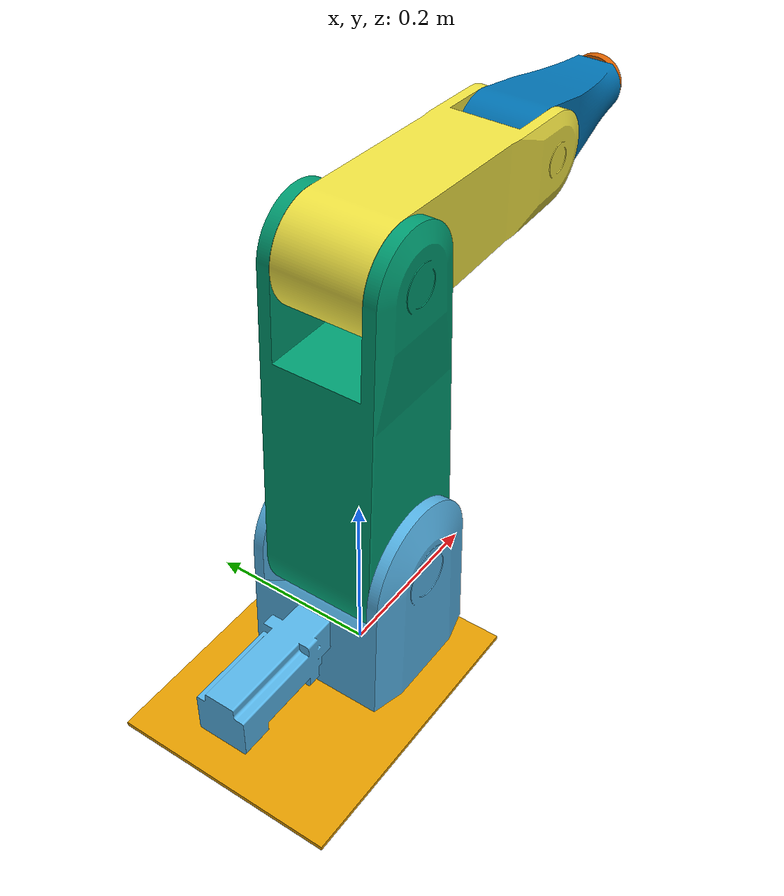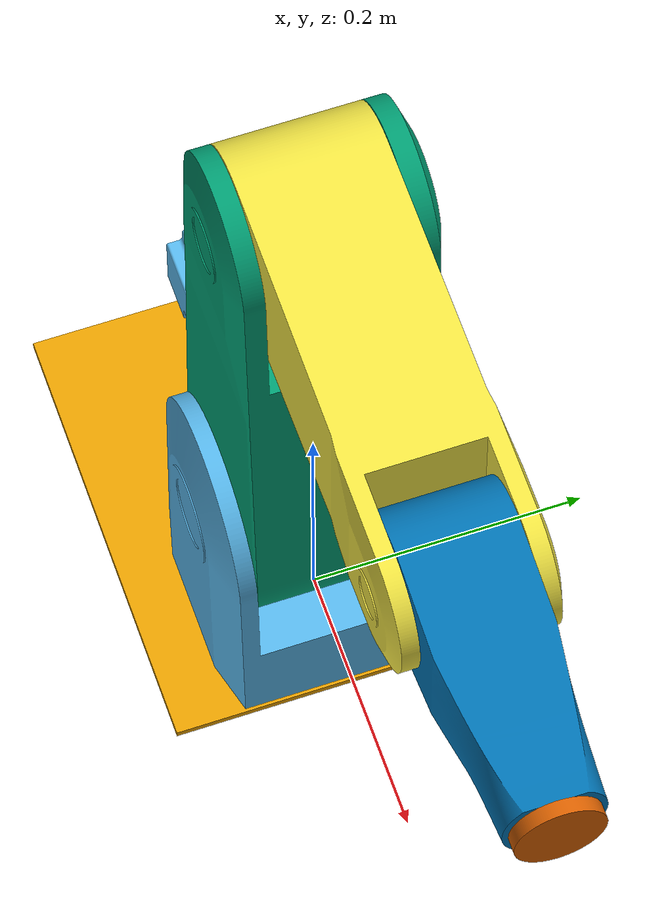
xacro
<?xml version="1.0"?>
<robot xmlns:xacro="http://www.ros.org/wiki/xacro"
       name="igus_robolink_rl_dp_5" >

  <!-- Controller settings -->
  <xacro:arg name="hardware_protocol" default="cprcanv2"/>

  <xacro:arg name="continuous_last_joint" default="false" />

  <!-- Prefix used for all joints and links, required for multi-robot setups!
  Only change this over the launch file parameters, so the rest of the stack
  knows what joint names to look for. -->
  <xacro:arg name="prefix" default="" />

  <!-- Gripper selection -->
  <xacro:arg name="gripper" default="none" />

  <!-- Include and call relevant macro -->
  <xacro:include filename="$(find irc_ros_description)/urdf/robots/igus_robolink_rl_dp_5.macro.xacro" />
  <xacro:igus_robolink_rl_dp_5 prefix="$(arg prefix)" continuous_last_joint="$(arg continuous_last_joint)" hardware_protocol="$(arg hardware_protocol)"/>

  <!-- Add world link -->
  <link name="world" />
  <joint name="world_to_$(arg prefix)base" type="fixed">
    <parent link="world" />
    <child link = "$(arg prefix)base_link" />
    <origin xyz="0.0 0.0 0.0" rpy="0.0 0.0 0.0" />
  </joint>

  <!-- Grippers -->
  <xacro:include filename="$(find irc_ros_description)/urdf/grippers/grippers.macro.xacro" />
  <xacro:gripper prefix="$(arg prefix)" gripper_type="$(arg gripper)" parent_link="$(arg prefix)flange" hardware_protocol="$(arg hardware_protocol)" />
</robot>

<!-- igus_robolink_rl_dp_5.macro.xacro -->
<robot xmlns:xacro="http://www.ros.org/wiki/xacro"
       name="igus_robolink_rl_dp_5" >

  <!-- Include relevant macros -->
  <xacro:include filename="$(find irc_ros_description)/urdf/robots/igus_robolink_rl_dp_5.description.xacro" />
  <xacro:include filename="$(find irc_ros_description)/urdf/robots/igus_robolink_rl_dp_5.ros2_control.xacro" />

  <xacro:macro name="igus_robolink_rl_dp_5" params="prefix hardware_protocol continuous_last_joint=false">
    <!-- Call macros once -->
    <xacro:igus_robolink_rl_dp_5_description prefix="${prefix}" continuous_last_joint="${continuous_last_joint}" />
    <xacro:igus_robolink_rl_dp_5_ros2_control prefix="${prefix}" hardware_protocol="${hardware_protocol}" continuous_last_joint="${continuous_last_joint}" />
  </xacro:macro>
</robot>

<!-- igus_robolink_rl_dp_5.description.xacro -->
<robot xmlns:xacro="http://www.ros.org/wiki/xacro"
       name="igus_robolink_rl_dp_5" >
  <xacro:macro name="igus_robolink_rl_dp_5_description" params="prefix continuous_last_joint">
    <link name="${prefix}base_link">
      <visual>
        <geometry>
          <mesh filename="file://$(find irc_ros_description)/meshes/igus_robolink_rl_dp_5/Joint0.dae"/>
        </geometry>
      </visual>
      <collision>
        <geometry>
          <mesh filename="file://$(find irc_ros_description)/meshes/igus_robolink_rl_dp_5/Joint0Coll.dae"/>
        </geometry>
      </collision>
      <inertial>
        <mass value="1.0"/>
        <inertia ixx="1.0" ixy="0.0" ixz="0.0" iyy="1.0" iyz="0.0" izz="1.0"/>
      </inertial>
    </link>
    <joint name="${prefix}joint1" type="revolute">
      <parent link="${prefix}base_link"/>
      <child link="${prefix}link_1"/>
      <origin rpy="0.0 0.0 0.0" xyz="0.0 0 0.0095"/>
      <axis xyz="0 0 -1"/>
      <limit effort="330.0" lower="${-pi*7/9}" upper="${pi*7/9}" velocity="2.16"/>
    </joint>
    <link name="${prefix}link_1">
      <visual>
        <geometry>
          <mesh filename="file://$(find irc_ros_description)/meshes/igus_robolink_rl_dp_5/Joint1.dae"/>
        </geometry>
        <origin rpy="0 0 0" xyz="0 0 0"/>
      </visual>
      <collision>
        <geometry>
          <mesh filename="file://$(find irc_ros_description)/meshes/igus_robolink_rl_dp_5/Joint1Coll.dae"/>
        </geometry>
        <origin rpy="0 0 0" xyz="0 0 0"/>
      </collision>
      <inertial>
        <mass value="0.1"/>
        <inertia ixx="0.03" ixy="0.0" ixz="0.0" iyy="0.03" iyz="0.0" izz="0.03"/>
      </inertial>
    </link>
    <joint name="${prefix}joint2" type="revolute">
      <parent link="${prefix}link_1"/>
      <child link="${prefix}link_2"/>
      <origin rpy="0.0 0.0 0.0" xyz="0.0 0 0.145"/>
      <axis xyz="0 1 0"/>
      <limit effort="330.0" lower="${-pi*5/18}" upper="${pi/2}" velocity="2.16"/>
    </joint>
    <link name="${prefix}link_2">
      <visual>
        <geometry>
          <mesh filename="file://$(find irc_ros_description)/meshes/igus_robolink_rl_dp_5/Joint2.dae"/>
        </geometry>
        <origin rpy="0 0 0" xyz="0 0 0"/>
      </visual>
      <collision>
        <geometry>
          <mesh filename="file://$(find irc_ros_description)/meshes/igus_robolink_rl_dp_5/Joint2Coll.dae"/>
        </geometry>
        <origin rpy="0 0 0" xyz="0 0 0"/>
      </collision>
      <inertial>
        <mass value="0.1"/>
        <inertia ixx="0.03" ixy="0.0" ixz="0.0" iyy="0.03" iyz="0.0" izz="0.03"/>
      </inertial>
    </link>
    <joint name="${prefix}joint3" type="revolute">
      <parent link="${prefix}link_2"/>
      <child link="${prefix}link_5"/>
      <origin rpy="0.0 1.57 0.0" xyz="0.0 0.0 0.350"/>
      <axis xyz="0 1 0"/>
      <limit effort="330.0" lower="${-pi*41/36}" upper="${pi*5/36}" velocity="2.16"/>
    </joint>
    <link name="${prefix}link_5">
      <visual>
        <geometry>
          <mesh filename="file://$(find irc_ros_description)/meshes/igus_robolink_rl_dp_5/Joint3.dae"/>
        </geometry>
        <origin rpy="0 0 0" xyz="0 0 0"/>
      </visual>
      <collision>
        <geometry>
          <mesh filename="file://$(find irc_ros_description)/meshes/igus_robolink_rl_dp_5/Joint3Coll.dae"/>
        </geometry>
        <origin rpy="0 0 0" xyz="0 0 0"/>
      </collision>
      <inertial>
        <mass value="0.1"/>
        <inertia ixx="0.03" ixy="0.0" ixz="0.0" iyy="0.03" iyz="0.0" izz="0.03"/>
      </inertial>
    </link>
    <joint name="${prefix}joint4" type="revolute">
      <parent link="${prefix}link_5"/>
      <child link="${prefix}link_6"/>
      <origin rpy="0.0 0.0 0.0" xyz="0.0 0 0.270"/>
      <axis xyz="0 1 0"/>
      <limit effort="330.0" lower="${-pi*5/9}" upper="${pi*5/9}" velocity="2.16"/>
    </joint>
    <link name="${prefix}link_6">
      <visual>
        <geometry>
          <mesh filename="file://$(find irc_ros_description)/meshes/igus_robolink_rl_dp_5/Joint4.dae"/>
        </geometry>
        <origin rpy="0 0 0" xyz="0 0 0"/>
      </visual>
      <collision>
        <geometry>
          <mesh filename="file://$(find irc_ros_description)/meshes/igus_robolink_rl_dp_5/Joint4Coll.dae"/>
        </geometry>
        <origin rpy="0 0 0" xyz="0 0 0"/>
      </collision>
      <inertial>
        <mass value="0.1"/>
        <inertia ixx="0.03" ixy="0.0" ixz="0.0" iyy="0.03" iyz="0.0" izz="0.03"/>
      </inertial>
    </link>
    <xacro:if value="${continuous_last_joint}">
      <joint name="${prefix}joint5" type="continuous">
        <parent link="${prefix}link_6"/>
        <child link="${prefix}link_7"/>
        <origin rpy="0.0 0.0 0.0" xyz="0.0 0 0.1785"/>
        <axis xyz="0 0 1"/>
        <limit effort="330.0" velocity="2.16"/>
      </joint>
    </xacro:if>
    <xacro:unless value="${continuous_last_joint}">
      <joint name="${prefix}joint5" type="revolute">
        <parent link="${prefix}link_6"/>
        <child link="${prefix}link_7"/>
        <origin rpy="0.0 0.0 0.0" xyz="0.0 0 0.1785"/>
        <axis xyz="0 0 1"/>
        <limit effort="330.0" lower="${-pi*179/180}" upper="${pi*179/180}" velocity="2.16"/>
      </joint>
    </xacro:unless>
    <link name="${prefix}link_7">
      <visual>
        <geometry>
          <mesh filename="file://$(find irc_ros_description)/meshes/igus_robolink_rl_dp_5/Joint5.dae"/>
        </geometry>
        <origin rpy="0 0 0" xyz="0 0 0"/>
      </visual>
      <collision>
        <geometry>
          <mesh filename="file://$(find irc_ros_description)/meshes/igus_robolink_rl_dp_5/Joint5Coll.dae"/>
        </geometry>
        <origin rpy="0 0 0" xyz="0 0 0"/>
      </collision>
      <inertial>
        <mass value="0.1"/>
        <inertia ixx="0.03" ixy="0.0" ixz="0.0" iyy="0.03" iyz="0.0" izz="0.03"/>
      </inertial>
    </link>
    <joint name="${prefix}joint6" type="fixed">
      <parent link="${prefix}link_7"/>
      <child link="${prefix}flange"/>
      <origin rpy="0.0 ${-pi/2} 0.0" xyz="0.0 0 0.0115"/>
      <axis xyz="0 0 1"/>
      <limit effort="330.0" lower="-1.65806" upper="1.65806" velocity="2.16"/>
    </joint>
    <link name="${prefix}flange">
    </link>
    <joint name="${prefix}flange_to_tool0" type="fixed">
      <parent link="${prefix}flange"/>
      <child link="${prefix}tool0"/>
      <origin rpy="0.0 0.0 0.0" xyz="0.0 0.0 0.0"/>
      <axis xyz="0 0 0"/>
    </joint>
    <link name="${prefix}tool0">
    </link>
  </xacro:macro>
</robot>

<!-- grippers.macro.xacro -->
<robot xmlns:xacro="http://www.ros.org/wiki/xacro"
       name="grippers" >

  <!-- Include all gripper macros -->
  <xacro:include filename="$(find irc_ros_description)/urdf/grippers/ext_dio_gripper.description.xacro" />
  <xacro:include filename="$(find irc_ros_description)/urdf/grippers/ext_dio_gripper.ros2_control.xacro" />

  <xacro:include filename="$(find irc_ros_description)/urdf/grippers/schmalz_ecbpmi.description.xacro" />

  <xacro:macro name="gripper" params="prefix gripper_type parent_link hardware_protocol">
    <!-- Call macros once -->
    <xacro:if value="${gripper_type == 'ext_dio_gripper'}">
      <xacro:ext_dio_gripper_description prefix="${prefix}" parent_link="${parent_link}" />
      <xacro:ext_dio_gripper_ros2_control prefix="${prefix}" parent_link="${parent_link}" hardware_protocol="${hardware_protocol}" />
    </xacro:if>
    <xacro:if value="${gripper_type == 'schmalz_ecbpmi'}">
      <xacro:schmalz_ecbpmi_description prefix="${prefix}" parent_link="${parent_link}" />
    </xacro:if>
    <xacro:if value="${gripper_type == 'none'}">
      <!-- Make sure tcp exists even if no tool is attached -->
      <joint name="${prefix}flange_to_tcp" type="fixed">
        <parent link="${prefix}flange"/>
        <child link="${prefix}tcp"/>
        <origin rpy="0.0 0.0 0.0" xyz="0.0 0.0 0.0"/>
        <axis xyz="0 0 0"/>
      </joint>
      <link name="${prefix}tcp">
        <inertial>
          <mass value="0.1"/>
          <inertia ixx="0.03" ixy="0.0" ixz="0.0" iyy="0.03" iyz="0.0" izz="0.03"/>
        </inertial>
      </link>
    </xacro:if>
  </xacro:macro>
</robot>
